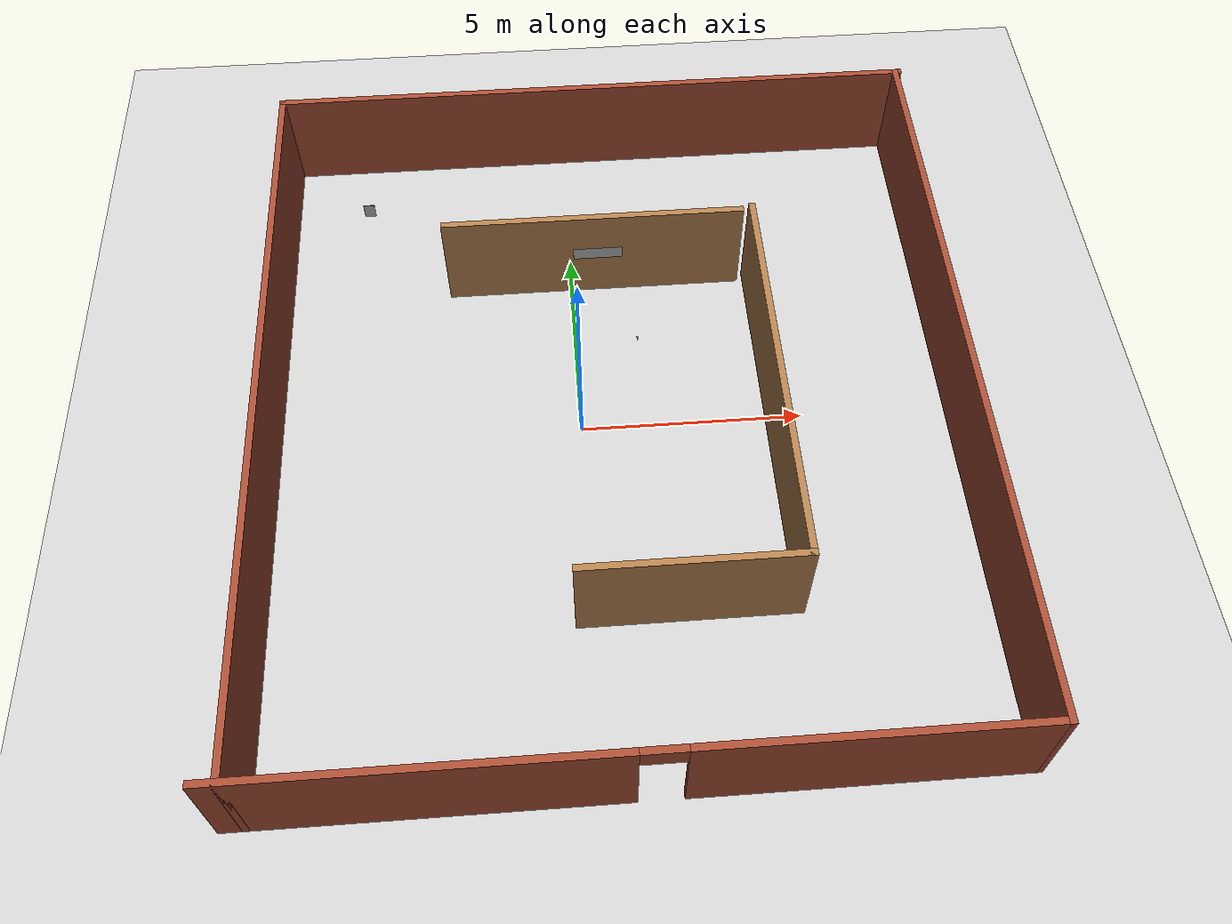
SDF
<sdf version="1.6">
 <world name="default">
  <model name="ground_plane">
   <static>1</static>
   <link name="link">
    <collision name="collision">
     <geometry><plane><normal>0 0 1</normal><size>100 100</size></plane></geometry>
     <surface><friction><ode><mu>100</mu><mu2>50</mu2></ode></friction></surface>
    </collision>
    <visual name="visual">
     <cast_shadows>0</cast_shadows>
     <geometry><plane><normal>0 0 1</normal><size>100 100</size></plane></geometry>
     <material>
      <script><uri>file://media/materials/scripts/gazebo.material</uri><name>Gazebo/Grey</name></script>
     </material>
    </visual>
   </link>
  </model>
  <model name="Untitled">
   <pose>0.603431 0.0078 0 0 -0 0</pose>
   <link name="Wall_15">
    <pose>-0.106136 -8.55 0 0 -0 0</pose>
    <visual name="Wall_15_Visual_0">
     <pose>-3.91595 0 1.25 0 -0 0</pose>
     <geometry><box><size>7.91811 0.15 2.5</size></box></geometry>
     <material>
      <script><uri>file://media/materials/scripts/gazebo.material</uri><name>Gazebo/Bricks</name></script>
      <ambient>1 1 1 1</ambient>
     </material>
    </visual>
    <collision name="Wall_15_Collision_0">
     <geometry><box><size>7.91811 0.15 2.5</size></box></geometry>
     <pose>-3.91595 0 1.25 0 -0 0</pose>
    </collision>
    <visual name="Wall_15_Visual_1">
     <pose>4.40905 0 1.25 0 -0 0</pose>
     <geometry><box><size>6.93189 0.15 2.5</size></box></geometry>
     <material>
      <script><uri>file://media/materials/scripts/gazebo.material</uri><name>Gazebo/Bricks</name></script>
      <ambient>1 1 1 1</ambient>
     </material>
    </visual>
    <collision name="Wall_15_Collision_1">
     <geometry><box><size>6.93189 0.15 2.5</size></box></geometry>
     <pose>4.40905 0 1.25 0 -0 0</pose>
    </collision>
    <visual name="Wall_15_Visual_2">
     <pose>0.493108 0 2.25 0 -0 0</pose>
     <geometry><box><size>0.9 0.15 0.5</size></box></geometry>
     <material>
      <script><uri>file://media/materials/scripts/gazebo.material</uri><name>Gazebo/Bricks</name></script>
      <ambient>1 1 1 1</ambient>
     </material>
    </visual>
    <collision name="Wall_15_Collision_2">
     <geometry><box><size>0.9 0.15 0.5</size></box></geometry>
     <pose>0.493108 0 2.25 0 -0 0</pose>
    </collision>
   </link>
   <link name="Wall_16">
    <collision name="Wall_16_Collision">
     <geometry><box><size>17.2513 0.15 2.5</size></box></geometry>
     <pose>0 0 1.25 0 -0 0</pose>
    </collision>
    <visual name="Wall_16_Visual">
     <pose>0 0 1.25 0 -0 0</pose>
     <geometry><box><size>17.2513 0.15 2.5</size></box></geometry>
     <material>
      <script><uri>file://media/materials/scripts/gazebo.material</uri><name>Gazebo/Bricks</name></script>
      <ambient>1 1 1 1</ambient>
     </material>
    </visual>
    <pose>7.76462 0 0 0 -0 1.56252</pose>
   </link>
   <link name="Wall_17">
    <collision name="Wall_17_Collision">
     <geometry><box><size>15.5 0.15 2.5</size></box></geometry>
     <pose>0 0 1.25 0 -0 0</pose>
    </collision>
    <visual name="Wall_17_Visual">
     <pose>0 0 1.25 0 -0 0</pose>
     <geometry><box><size>15.5 0.15 2.5</size></box></geometry>
     <material>
      <script><uri>file://media/materials/scripts/gazebo.material</uri><name>Gazebo/Bricks</name></script>
      <ambient>1 1 1 1</ambient>
     </material>
    </visual>
    <pose>0.231135 8.55 0 0 -0 3.14159</pose>
   </link>
   <link name="Wall_21">
    <collision name="Wall_21_Collision">
     <geometry><box><size>17.25 0.15 2.5</size></box></geometry>
     <pose>0 0 1.25 0 -0 0</pose>
    </collision>
    <visual name="Wall_21_Visual">
     <pose>0 0 1.25 0 -0 0</pose>
     <geometry><box><size>17.25 0.15 2.5</size></box></geometry>
     <material>
      <script><uri>file://media/materials/scripts/gazebo.material</uri><name>Gazebo/Bricks</name></script>
      <ambient>1 1 1 1</ambient>
     </material>
    </visual>
    <pose>-7.44386 0 0 0 0 -1.5708</pose>
   </link>
   <link name="Wall_23">
    <collision name="Wall_23_Collision">
     <geometry><box><size>9.25 0.15 2.5</size></box></geometry>
     <pose>0 0 1.25 0 -0 0</pose>
    </collision>
    <visual name="Wall_23_Visual">
     <pose>0 0 1.25 0 -0 0</pose>
     <geometry><box><size>9.25 0.15 2.5</size></box></geometry>
     <material>
      <script><uri>file://media/materials/scripts/gazebo.material</uri><name>Gazebo/Wood</name></script>
      <ambient>1 1 1 1</ambient>
     </material>
    </visual>
    <pose>3.6418 -0.302151 0 0 0 -1.5708</pose>
   </link>
   <link name="Wall_24">
    <collision name="Wall_24_Collision">
     <geometry><box><size>4.75 0.15 2.5</size></box></geometry>
     <pose>0 0 1.25 0 -0 0</pose>
    </collision>
    <visual name="Wall_24_Visual">
     <pose>0 0 1.25 0 -0 0</pose>
     <geometry><box><size>4.75 0.15 2.5</size></box></geometry>
     <material>
      <script><uri>file://media/materials/scripts/gazebo.material</uri><name>Gazebo/Wood</name></script>
      <ambient>1 1 1 1</ambient>
     </material>
    </visual>
    <pose>1.3418 -4.85215 0 0 -0 3.14159</pose>
   </link>
   <link name="Wall_26">
    <collision name="Wall_26_Collision">
     <geometry><box><size>7 0.15 2.5</size></box></geometry>
     <pose>0 0 1.25 0 -0 0</pose>
    </collision>
    <visual name="Wall_26_Visual">
     <pose>0 0 1.25 0 -0 0</pose>
     <geometry><box><size>7 0.15 2.5</size></box></geometry>
     <material>
      <script><uri>file://media/materials/scripts/gazebo.material</uri><name>Gazebo/Wood</name></script>
      <ambient>1 1 1 1</ambient>
     </material>
    </visual>
    <pose>-0.066232 4.17709 0 0 -0 3.14159</pose>
   </link>
   <static>1</static>
  </model>
  <model name="bobac">
   <link name="link_0">
    <inertial>
     <mass>1</mass>
     <inertia>
      <ixx>0.166667</ixx>
      <ixy>0</ixy>
      <ixz>0</ixz>
      <iyy>0.166667</iyy>
      <iyz>0</iyz>
      <izz>0.166667</izz>
     </inertia>
    </inertial>
    <visual name="visual">
     <geometry><box><size>0.268 0.01 0.399999</size></box></geometry>
     <material>
      <lighting>1</lighting>
      <script>
       <uri>model://bobac/materials/scripts</uri>
       <uri>model://bobac/materials/textures</uri>
       <name>Bobac/Image</name>
      </script>
      <ambient>0.3 0.3 0.3 1</ambient>
      <diffuse>0.7 0.7 0.7 1</diffuse>
      <specular>0.01 0.01 0.01 1</specular>
      <emissive>0 0 0 1</emissive>
      <shader type="vertex"><normal_map>__default__</normal_map></shader>
     </material>
    </visual>
    <collision name="collision">
     <geometry><box><size>0.0010002 0.001 0.000999449</size></box></geometry>
     <surface>
      <friction>
       <ode><mu>1</mu><mu2>1</mu2><fdir1>0 0 0</fdir1><slip1>0</slip1><slip2>0</slip2></ode>
       <torsional>
        <coefficient>1</coefficient>
        <patch_radius>0</patch_radius>
        <surface_radius>0</surface_radius>
        <use_patch_radius>1</use_patch_radius>
        <ode><slip>0</slip></ode>
       </torsional>
      </friction>
      <bounce><restitution_coefficient>0</restitution_coefficient><threshold>1e+06</threshold></bounce>
      <contact>
       <collide_without_contact>0</collide_without_contact>
       <collide_without_contact_bitmask>1</collide_without_contact_bitmask>
       <collide_bitmask>1</collide_bitmask>
       <ode>
        <soft_cfm>0</soft_cfm>
        <soft_erp>0.2</soft_erp>
        <kp>1e+13</kp>
        <kd>1</kd>
        <max_vel>0.01</max_vel>
        <min_depth>0</min_depth>
       </ode>
       <bullet>
        <split_impulse>1</split_impulse>
        <split_impulse_penetration_threshold>-0.01</split_impulse_penetration_threshold>
        <soft_cfm>0</soft_cfm>
        <soft_erp>0.2</soft_erp>
        <kp>1e+13</kp>
        <kd>1</kd>
       </bullet>
      </contact>
     </surface>
    </collision>
   </link>
   <static>1</static>
   <pose>-4.98574 6.88032 0.262723 0 -0 0</pose>
  </model>
  <model name="reinovo">
   <link name="link_0">
    <inertial>
     <mass>1</mass>
     <inertia>
      <ixx>0.166667</ixx>
      <ixy>0</ixy>
      <ixz>0</ixz>
      <iyy>0.166667</iyy>
      <iyz>0</iyz>
      <izz>0.166667</izz>
     </inertia>
    </inertial>
    <visual name="visual">
     <geometry><box><size>1.15354 0.005 0.334517</size></box></geometry>
     <material>
      <lighting>1</lighting>
      <script>
       <uri>model://reinovo/materials/scripts</uri>
       <uri>model://reinovo/materials/textures</uri>
       <name>Reinovo/Image</name>
      </script>
      <ambient>0.3 0.3 0.3 1</ambient>
      <diffuse>0.7 0.7 0.7 1</diffuse>
      <specular>0.01 0.01 0.01 1</specular>
      <emissive>0 0 0 1</emissive>
      <shader type="vertex"><normal_map>__default__</normal_map></shader>
     </material>
    </visual>
    <collision name="collision">
     <geometry><box><size>0.0384513 0.01 0.0278764</size></box></geometry>
     <surface>
      <friction>
       <ode><mu>1</mu><mu2>1</mu2><fdir1>0 0 0</fdir1><slip1>0</slip1><slip2>0</slip2></ode>
       <torsional>
        <coefficient>1</coefficient>
        <patch_radius>0</patch_radius>
        <surface_radius>0</surface_radius>
        <use_patch_radius>1</use_patch_radius>
        <ode><slip>0</slip></ode>
       </torsional>
      </friction>
      <bounce><restitution_coefficient>0</restitution_coefficient><threshold>1e+06</threshold></bounce>
      <contact>
       <collide_without_contact>0</collide_without_contact>
       <collide_without_contact_bitmask>1</collide_without_contact_bitmask>
       <collide_bitmask>1</collide_bitmask>
       <ode>
        <soft_cfm>0</soft_cfm>
        <soft_erp>0.2</soft_erp>
        <kp>1e+13</kp>
        <kd>1</kd>
        <max_vel>0.01</max_vel>
        <min_depth>0</min_depth>
       </ode>
       <bullet>
        <split_impulse>1</split_impulse>
        <split_impulse_penetration_threshold>-0.01</split_impulse_penetration_threshold>
        <soft_cfm>0</soft_cfm>
        <soft_erp>0.2</soft_erp>
        <kp>1e+13</kp>
        <kd>1</kd>
       </bullet>
      </contact>
     </surface>
    </collision>
   </link>
   <static>1</static>
   <pose>0.635417 4.07811 1.35988 0 -0 0</pose>
  </model>
  <model name="ar_box1_one">
   <link name="link_0">
    <inertial>
     <mass>0.2</mass>
     <inertia>
      <ixx>0.166667</ixx>
      <ixy>0</ixy>
      <ixz>0</ixz>
      <iyy>0.166667</iyy>
      <iyz>0</iyz>
      <izz>0.166667</izz>
     </inertia>
    </inertial>
    <visual name="visual">
     <geometry><box><size>0.035 0.035 0.03</size></box></geometry>
     <material>
      <lighting>1</lighting>
      <script><uri>file://media/materials/scripts/gazebo.material</uri><name>Gazebo/Grey</name></script>
      <ambient>0.3 0.3 0.3 1</ambient>
      <diffuse>0.7 0.7 0.7 1</diffuse>
      <specular>0.01 0.01 0.01 1</specular>
      <emissive>1 1 1 1</emissive>
      <shader type="vertex"><normal_map>__default__</normal_map></shader>
     </material>
    </visual>
    <collision name="collision">
     <geometry><cylinder><radius>0.0214</radius><length>0.03</length></cylinder></geometry>
     <surface>
      <friction><ode><mu>0.2</mu><mu2>0.2</mu2></ode></friction>
      <bounce><restitution_coefficient>0</restitution_coefficient><threshold>1e+06</threshold></bounce>
      <contact>
       <collide_without_contact>0</collide_without_contact>
       <collide_without_contact_bitmask>1</collide_without_contact_bitmask>
       <collide_bitmask>1</collide_bitmask>
       <ode>
        <soft_cfm>0</soft_cfm>
        <soft_erp>0.2</soft_erp>
        <kp>1e+13</kp>
        <kd>1</kd>
        <max_vel>0.01</max_vel>
        <min_depth>0</min_depth>
       </ode>
       <bullet>
        <split_impulse>1</split_impulse>
        <split_impulse_penetration_threshold>-0.01</split_impulse_penetration_threshold>
        <soft_cfm>0</soft_cfm>
        <soft_erp>0.2</soft_erp>
        <kp>1e+13</kp>
        <kd>1</kd>
       </bullet>
      </contact>
     </surface>
    </collision>
   </link>
   <model name="ar_box1">
    <link name="link_0">
     <inertial>
      <mass>1.87342e-05</mass>
      <inertia>
       <ixx>9.25984e-08</ixx>
       <ixy>0</ixy>
       <ixz>0</ixz>
       <iyy>1.0155e-07</iyy>
       <iyz>0</iyz>
       <izz>1.22113e-07</izz>
      </inertia>
     </inertial>
     <visual name="visual">
      <geometry><box><size>0.0298 0.0298 0.0305</size></box></geometry>
      <material>
       <lighting>1</lighting>
       <script>
        <uri>model://ar_box1/materials/scripts</uri>
        <uri>model://ar_box1/materials/textures</uri>
        <name>ArBox1/Image</name>
       </script>
       <ambient>0.3 0.3 0.3 1</ambient>
       <diffuse>0.7 0.7 0.7 1</diffuse>
       <specular>0.01 0.01 0.01 1</specular>
       <emissive>1 1 1 1</emissive>
      </material>
      <cast_shadows>0</cast_shadows>
     </visual>
     <collision name="collision">
      <geometry><box><size>0.03 0.03 0.03</size></box></geometry>
      <surface>
       <friction><ode><mu>0.2</mu><mu2>0.2</mu2></ode></friction>
       <bounce><restitution_coefficient>0</restitution_coefficient><threshold>1e+06</threshold></bounce>
       <contact>
        <collide_without_contact>0</collide_without_contact>
        <collide_without_contact_bitmask>1</collide_without_contact_bitmask>
        <collide_bitmask>1</collide_bitmask>
        <ode>
         <soft_cfm>0</soft_cfm>
         <soft_erp>0.2</soft_erp>
         <kp>1e+13</kp>
         <kd>1</kd>
         <max_vel>0.01</max_vel>
         <min_depth>0</min_depth>
        </ode>
        <bullet>
         <split_impulse>1</split_impulse>
         <split_impulse_penetration_threshold>-0.01</split_impulse_penetration_threshold>
         <soft_cfm>0</soft_cfm>
         <soft_erp>0.2</soft_erp>
         <kp>1e+13</kp>
         <kd>1</kd>
        </bullet>
       </contact>
      </surface>
     </collision>
    </link>
    <static>0</static>
   </model>
   <joint name="link_0_JOINT_0" type="fixed">
    <parent>link_0</parent>
    <child>ar_box1::link_0</child>
    <physics>
     <ode><limit><cfm>0</cfm><erp>0.2</erp></limit><suspension><cfm>0</cfm><erp>0.2</erp></suspension></ode>
    </physics>
   </joint>
   <static>0</static>
   <pose>1.45643 2.3924 0.135005 3.14144 0.000167 -3.11364</pose>
  </model>
  <model name="ar_box3_one">
   <link name="link_0">
    <inertial>
     <mass>0.2</mass>
     <inertia>
      <ixx>0.166667</ixx>
      <ixy>0</ixy>
      <ixz>0</ixz>
      <iyy>0.166667</iyy>
      <iyz>0</iyz>
      <izz>0.166667</izz>
     </inertia>
    </inertial>
    <visual name="visual">
     <geometry><box><size>0.035 0.035 0.03</size></box></geometry>
     <material>
      <lighting>1</lighting>
      <script><uri>file://media/materials/scripts/gazebo.material</uri><name>Gazebo/Grey</name></script>
      <ambient>0.3 0.3 0.3 1</ambient>
      <diffuse>0.7 0.7 0.7 1</diffuse>
      <specular>0.01 0.01 0.01 1</specular>
      <emissive>1 1 1 1</emissive>
      <shader type="vertex"><normal_map>__default__</normal_map></shader>
     </material>
    </visual>
    <collision name="collision">
     <geometry><cylinder><radius>0.0214</radius><length>0.03</length></cylinder></geometry>
     <surface>
      <friction><ode><mu>0.2</mu><mu2>0.2</mu2></ode></friction>
      <bounce><restitution_coefficient>0</restitution_coefficient><threshold>1e+06</threshold></bounce>
      <contact>
       <collide_without_contact>0</collide_without_contact>
       <collide_without_contact_bitmask>1</collide_without_contact_bitmask>
       <collide_bitmask>1</collide_bitmask>
       <ode>
        <soft_cfm>0</soft_cfm>
        <soft_erp>0.2</soft_erp>
        <kp>1e+13</kp>
        <kd>1</kd>
        <max_vel>0.01</max_vel>
        <min_depth>0</min_depth>
       </ode>
       <bullet>
        <split_impulse>1</split_impulse>
        <split_impulse_penetration_threshold>-0.01</split_impulse_penetration_threshold>
        <soft_cfm>0</soft_cfm>
        <soft_erp>0.2</soft_erp>
        <kp>1e+13</kp>
        <kd>1</kd>
       </bullet>
      </contact>
     </surface>
    </collision>
   </link>
   <model name="ar_box3">
    <link name="link_0">
     <inertial>
      <mass>1.87342e-05</mass>
      <inertia>
       <ixx>9.25984e-08</ixx>
       <ixy>0</ixy>
       <ixz>0</ixz>
       <iyy>1.0155e-07</iyy>
       <iyz>0</iyz>
       <izz>1.22113e-07</izz>
      </inertia>
     </inertial>
     <visual name="visual">
      <geometry><box><size>0.0298 0.0298 0.0305</size></box></geometry>
      <material>
       <lighting>1</lighting>
       <script>
        <uri>model://ar_box3/materials/scripts</uri>
        <uri>model://ar_box3/materials/textures</uri>
        <name>ArBox3/Image</name>
       </script>
       <ambient>0.3 0.3 0.3 1</ambient>
       <diffuse>0.7 0.7 0.7 1</diffuse>
       <specular>0.01 0.01 0.01 1</specular>
       <emissive>1 1 1 1</emissive>
      </material>
      <cast_shadows>0</cast_shadows>
     </visual>
     <collision name="collision">
      <geometry><box><size>0.03 0.03 0.03</size></box></geometry>
      <surface>
       <friction><ode><mu>0.2</mu><mu2>0.2</mu2></ode></friction>
       <bounce><restitution_coefficient>0</restitution_coefficient><threshold>1e+06</threshold></bounce>
       <contact>
        <collide_without_contact>0</collide_without_contact>
        <collide_without_contact_bitmask>1</collide_without_contact_bitmask>
        <collide_bitmask>1</collide_bitmask>
        <ode>
         <soft_cfm>0</soft_cfm>
         <soft_erp>0.2</soft_erp>
         <kp>1e+13</kp>
         <kd>1</kd>
         <max_vel>0.01</max_vel>
         <min_depth>0</min_depth>
        </ode>
        <bullet>
         <split_impulse>1</split_impulse>
         <split_impulse_penetration_threshold>-0.01</split_impulse_penetration_threshold>
         <soft_cfm>0</soft_cfm>
         <soft_erp>0.2</soft_erp>
         <kp>1e+13</kp>
         <kd>1</kd>
        </bullet>
       </contact>
      </surface>
     </collision>
    </link>
    <static>0</static>
   </model>
   <joint name="link_0_JOINT_0" type="fixed">
    <parent>link_0</parent>
    <child>ar_box3::link_0</child>
    <physics>
     <ode><limit><cfm>0</cfm><erp>0.2</erp></limit><suspension><cfm>0</cfm><erp>0.2</erp></suspension></ode>
    </physics>
   </joint>
   <static>0</static>
   <pose>1.45685 2.43978 0.135007 3.1413 5.5e-05 -3.09314</pose>
  </model>
 </world>
</sdf>
